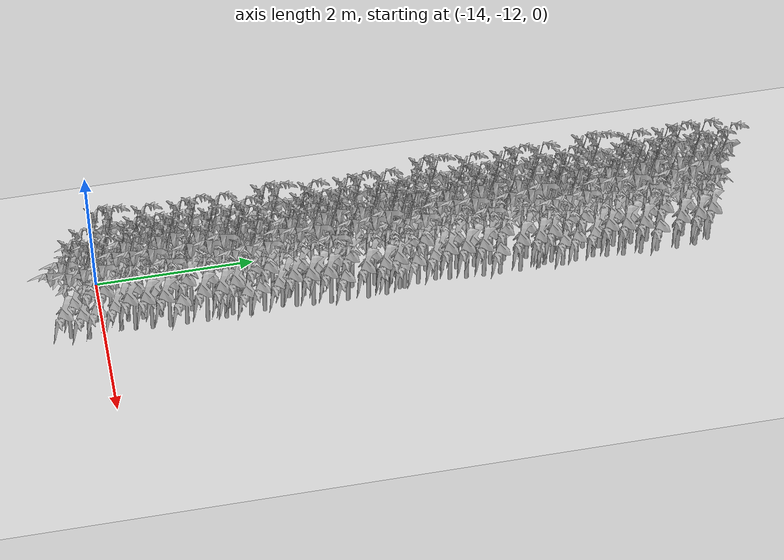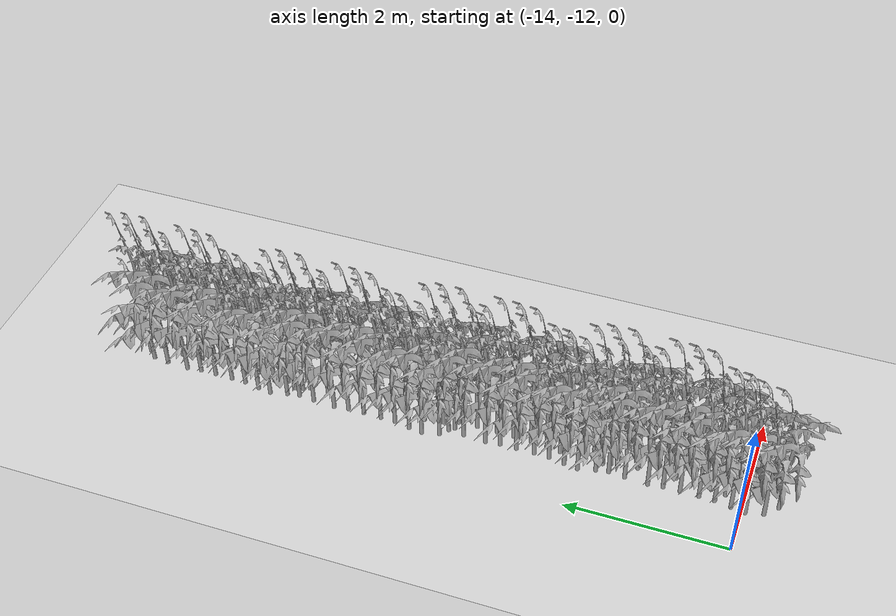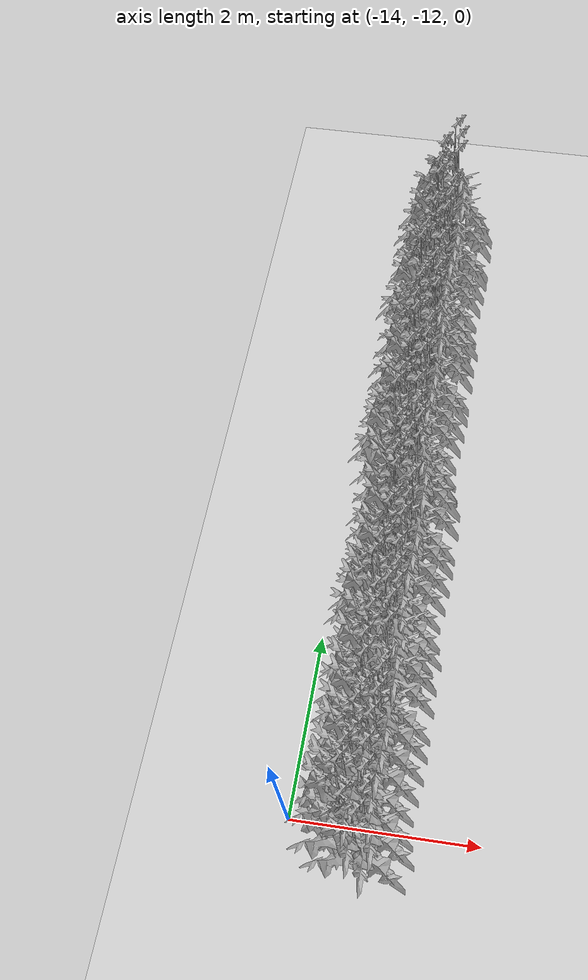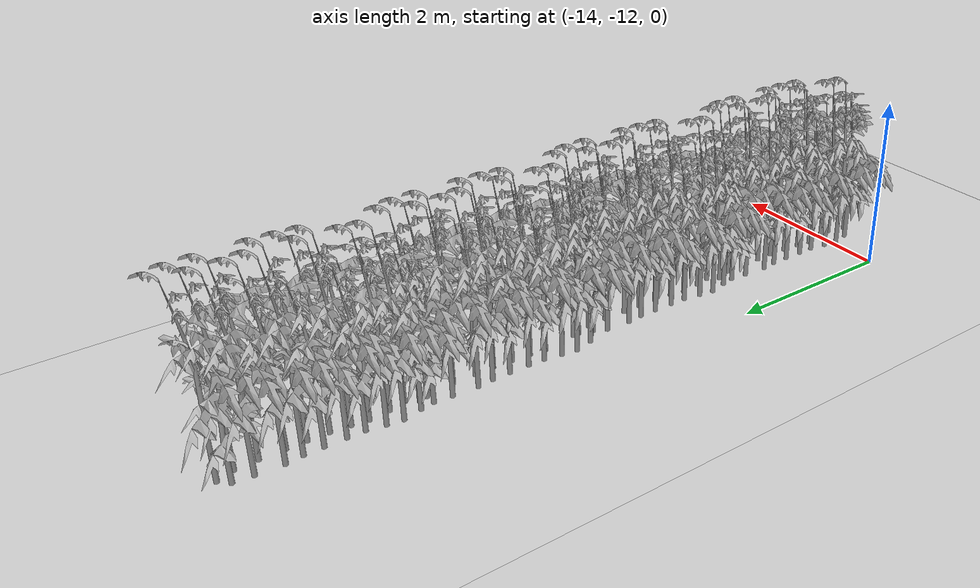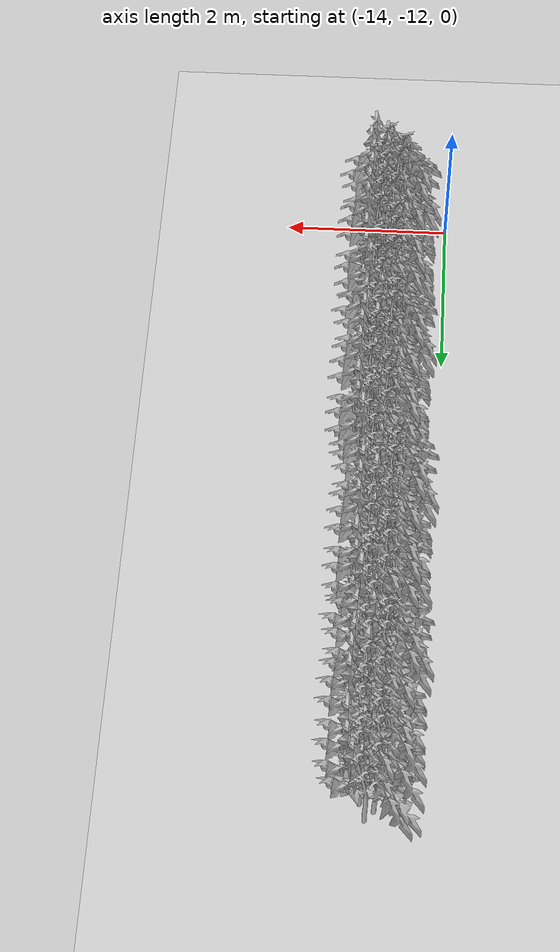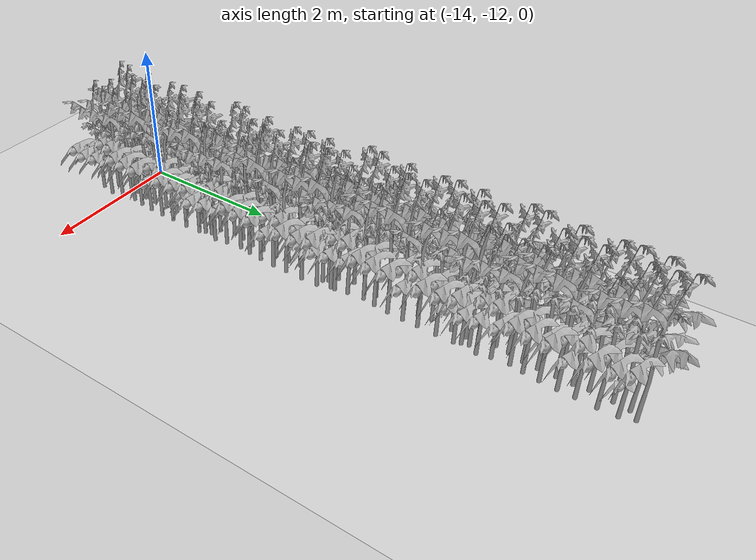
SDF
<sdf version="1.6">
 <world name="default">
  <model name="ground_plane">
   <static>1</static>
   <link name="link">
    <collision name="collision">
     <geometry><plane><normal>0 0 1</normal><size>100 100</size></plane></geometry>
     <surface>
      <contact><collide_bitmask>65535</collide_bitmask></contact>
      <friction><ode><mu>100</mu><mu2>50</mu2></ode></friction>
     </surface>
    </collision>
    <visual name="visual">
     <cast_shadows>0</cast_shadows>
     <geometry><plane><normal>0 0 1</normal><size>100 100</size></plane></geometry>
     <material>
      <script><uri>file://media/materials/scripts/gazebo.material</uri><name>Gazebo/Grey</name></script>
     </material>
    </visual>
   </link>
  </model>
  <model name="MIddle_Plant_3_7">
   <model name="MIddle_Plant_1">
    <model name="tomato_plant_big">
     <static>1</static>
     <link name="link">
      <collision name="collision">
       <pose>0 0 0 1.5708 -0 0</pose>
       <geometry><mesh><scale>0.5 0.6 0.5</scale><uri>model://stick/meshes/stick.dae</uri></mesh></geometry>
      </collision>
      <visual name="visual">
       <geometry>
        <mesh><scale>5e-06 5e-06 7e-06</scale><uri>model://tomato_plant_big/meshes/tomato-plant.dae</uri></mesh>
       </geometry>
      </visual>
     </link>
     <pose>-0.144318 -0.693607 -0 0 -0 0</pose>
    </model>
    <model name="tomato_plant_big_0">
     <static>1</static>
     <link name="link">
      <collision name="collision">
       <pose>0 0 0 1.5708 -0 0</pose>
       <geometry><mesh><scale>0.5 0.6 0.5</scale><uri>model://stick/meshes/stick.dae</uri></mesh></geometry>
      </collision>
      <visual name="visual">
       <geometry>
        <mesh><scale>5e-06 5e-06 7e-06</scale><uri>model://tomato_plant_big/meshes/tomato-plant.dae</uri></mesh>
       </geometry>
      </visual>
     </link>
     <pose>-0.11784 -0.519827 0 0 -0 0</pose>
    </model>
    <model name="tomato_plant_big_1">
     <static>1</static>
     <link name="link">
      <collision name="collision">
       <pose>0 0 0 1.5708 -0 0</pose>
       <geometry><mesh><scale>0.5 0.6 0.5</scale><uri>model://stick/meshes/stick.dae</uri></mesh></geometry>
      </collision>
      <visual name="visual">
       <geometry>
        <mesh><scale>5e-06 5e-06 7e-06</scale><uri>model://tomato_plant_big/meshes/tomato-plant.dae</uri></mesh>
       </geometry>
      </visual>
     </link>
     <pose>0.073755 -0.247584 0 0 -0 0</pose>
    </model>
    <model name="tomato_plant_big_10">
     <static>1</static>
     <link name="link">
      <collision name="collision">
       <pose>0 0 0 1.5708 -0 0</pose>
       <geometry><mesh><scale>0.5 0.6 0.5</scale><uri>model://stick/meshes/stick.dae</uri></mesh></geometry>
      </collision>
      <visual name="visual">
       <geometry>
        <mesh><scale>5e-06 5e-06 7e-06</scale><uri>model://tomato_plant_big/meshes/tomato-plant.dae</uri></mesh>
       </geometry>
      </visual>
     </link>
     <pose>0.037052 1.07094 0 0 -0 0</pose>
    </model>
    <model name="tomato_plant_big_2">
     <static>1</static>
     <link name="link">
      <collision name="collision">
       <pose>0 0 0 1.5708 -0 0</pose>
       <geometry><mesh><scale>0.5 0.6 0.5</scale><uri>model://stick/meshes/stick.dae</uri></mesh></geometry>
      </collision>
      <visual name="visual">
       <geometry>
        <mesh><scale>5e-06 5e-06 7e-06</scale><uri>model://tomato_plant_big/meshes/tomato-plant.dae</uri></mesh>
       </geometry>
      </visual>
     </link>
     <pose>-0.076926 -0.131165 0 0 -0 0</pose>
    </model>
    <model name="tomato_plant_big_3">
     <static>1</static>
     <link name="link">
      <collision name="collision">
       <pose>0 0 0 1.5708 -0 0</pose>
       <geometry><mesh><scale>0.5 0.6 0.5</scale><uri>model://stick/meshes/stick.dae</uri></mesh></geometry>
      </collision>
      <visual name="visual">
       <geometry>
        <mesh><scale>5e-06 5e-06 7e-06</scale><uri>model://tomato_plant_big/meshes/tomato-plant.dae</uri></mesh>
       </geometry>
      </visual>
     </link>
     <pose>0.093714 -0.038386 0 0 -0 0</pose>
    </model>
    <model name="tomato_plant_big_4">
     <static>1</static>
     <link name="link">
      <collision name="collision">
       <pose>0 0 0 1.5708 -0 0</pose>
       <geometry><mesh><scale>0.5 0.6 0.5</scale><uri>model://stick/meshes/stick.dae</uri></mesh></geometry>
      </collision>
      <visual name="visual">
       <geometry>
        <mesh><scale>5e-06 5e-06 7e-06</scale><uri>model://tomato_plant_big/meshes/tomato-plant.dae</uri></mesh>
       </geometry>
      </visual>
     </link>
     <pose>0.103117 0.184356 0 0 -0 0</pose>
    </model>
    <model name="tomato_plant_big_5">
     <static>1</static>
     <link name="link">
      <collision name="collision">
       <pose>0 0 0 1.5708 -0 0</pose>
       <geometry><mesh><scale>0.5 0.6 0.5</scale><uri>model://stick/meshes/stick.dae</uri></mesh></geometry>
      </collision>
      <visual name="visual">
       <geometry>
        <mesh><scale>5e-06 5e-06 7e-06</scale><uri>model://tomato_plant_big/meshes/tomato-plant.dae</uri></mesh>
       </geometry>
      </visual>
     </link>
     <pose>-0.074883 0.301479 0 0 -0 0</pose>
    </model>
    <model name="tomato_plant_big_6">
     <static>1</static>
     <link name="link">
      <collision name="collision">
       <pose>0 0 0 1.5708 -0 0</pose>
       <geometry><mesh><scale>0.5 0.6 0.5</scale><uri>model://stick/meshes/stick.dae</uri></mesh></geometry>
      </collision>
      <visual name="visual">
       <geometry>
        <mesh><scale>5e-06 5e-06 7e-06</scale><uri>model://tomato_plant_big/meshes/tomato-plant.dae</uri></mesh>
       </geometry>
      </visual>
     </link>
     <pose>-0.096921 0.484007 0 0 -0 0</pose>
    </model>
    <model name="tomato_plant_big_7">
     <static>1</static>
     <link name="link">
      <collision name="collision">
       <pose>0 0 0 1.5708 -0 0</pose>
       <geometry><mesh><scale>0.5 0.6 0.5</scale><uri>model://stick/meshes/stick.dae</uri></mesh></geometry>
      </collision>
      <visual name="visual">
       <geometry>
        <mesh><scale>5e-06 5e-06 7e-06</scale><uri>model://tomato_plant_big/meshes/tomato-plant.dae</uri></mesh>
       </geometry>
      </visual>
     </link>
     <pose>0.107491 0.653976 0 0 -0 0</pose>
    </model>
    <model name="tomato_plant_big_8">
     <static>1</static>
     <link name="link">
      <collision name="collision">
       <pose>0 0 0 1.5708 -0 0</pose>
       <geometry><mesh><scale>0.5 0.6 0.5</scale><uri>model://stick/meshes/stick.dae</uri></mesh></geometry>
      </collision>
      <visual name="visual">
       <geometry>
        <mesh><scale>5e-06 5e-06 7e-06</scale><uri>model://tomato_plant_big/meshes/tomato-plant.dae</uri></mesh>
       </geometry>
      </visual>
     </link>
     <pose>-0.07985 0.768549 0 0 -0 0</pose>
    </model>
    <model name="tomato_plant_big_9">
     <static>1</static>
     <link name="link">
      <collision name="collision">
       <pose>0 0 0 1.5708 -0 0</pose>
       <geometry><mesh><scale>0.5 0.6 0.5</scale><uri>model://stick/meshes/stick.dae</uri></mesh></geometry>
      </collision>
      <visual name="visual">
       <geometry>
        <mesh><scale>5e-06 5e-06 7e-06</scale><uri>model://tomato_plant_big/meshes/tomato-plant.dae</uri></mesh>
       </geometry>
      </visual>
     </link>
     <pose>0.098361 0.890852 0 0 -0 0</pose>
    </model>
    <model name="tomato_plant_medium">
     <static>1</static>
     <link name="link">
      <collision name="collision">
       <pose>0 0 0 1.5708 -0 0</pose>
       <geometry><mesh><scale>0.5 0.5 0.5</scale><uri>model://stick/meshes/stick.dae</uri></mesh></geometry>
      </collision>
      <visual name="visual">
       <geometry>
        <mesh><scale>5e-06 5e-06 6e-06</scale><uri>model://tomato_plant_medium/meshes/tomato-plant.dae</uri></mesh>
       </geometry>
      </visual>
     </link>
     <pose>0.056913 -1.05328 0 0 -0 0</pose>
    </model>
    <model name="tomato_plant_medium_0">
     <static>1</static>
     <link name="link">
      <collision name="collision">
       <pose>0 0 0 1.5708 -0 0</pose>
       <geometry><mesh><scale>0.5 0.5 0.5</scale><uri>model://stick/meshes/stick.dae</uri></mesh></geometry>
      </collision>
      <visual name="visual">
       <geometry>
        <mesh><scale>5e-06 5e-06 6e-06</scale><uri>model://tomato_plant_medium/meshes/tomato-plant.dae</uri></mesh>
       </geometry>
      </visual>
     </link>
     <pose>-0.092719 -0.905729 0 0 -0 0</pose>
    </model>
    <model name="tomato_plant_medium_1">
     <static>1</static>
     <link name="link">
      <collision name="collision">
       <pose>0 0 0 1.5708 -0 0</pose>
       <geometry><mesh><scale>0.5 0.5 0.5</scale><uri>model://stick/meshes/stick.dae</uri></mesh></geometry>
      </collision>
      <visual name="visual">
       <geometry>
        <mesh><scale>5e-06 5e-06 6e-06</scale><uri>model://tomato_plant_medium/meshes/tomato-plant.dae</uri></mesh>
       </geometry>
      </visual>
     </link>
     <pose>0.108962 -0.829637 0 0 -0 0</pose>
    </model>
    <model name="tomato_plant_medium_2">
     <static>1</static>
     <link name="link">
      <collision name="collision">
       <pose>0 0 0 1.5708 -0 0</pose>
       <geometry><mesh><scale>0.5 0.5 0.5</scale><uri>model://stick/meshes/stick.dae</uri></mesh></geometry>
      </collision>
      <visual name="visual">
       <geometry>
        <mesh><scale>5e-06 5e-06 6e-06</scale><uri>model://tomato_plant_medium/meshes/tomato-plant.dae</uri></mesh>
       </geometry>
      </visual>
     </link>
     <pose>0.071216 -0.652507 0 0 -0 0</pose>
    </model>
    <model name="tomato_plant_medium_3">
     <static>1</static>
     <link name="link">
      <collision name="collision">
       <pose>0 0 0 1.5708 -0 0</pose>
       <geometry><mesh><scale>0.5 0.5 0.5</scale><uri>model://stick/meshes/stick.dae</uri></mesh></geometry>
      </collision>
      <visual name="visual">
       <geometry>
        <mesh><scale>5e-06 5e-06 6e-06</scale><uri>model://tomato_plant_medium/meshes/tomato-plant.dae</uri></mesh>
       </geometry>
      </visual>
     </link>
     <pose>0.047335 -0.423046 0 0 -0 0</pose>
    </model>
    <model name="tomato_plant_medium_4">
     <static>1</static>
     <link name="link">
      <collision name="collision">
       <pose>0 0 0 1.5708 -0 0</pose>
       <geometry><mesh><scale>0.5 0.5 0.5</scale><uri>model://stick/meshes/stick.dae</uri></mesh></geometry>
      </collision>
      <visual name="visual">
       <geometry>
        <mesh><scale>5e-06 5e-06 6e-06</scale><uri>model://tomato_plant_medium/meshes/tomato-plant.dae</uri></mesh>
       </geometry>
      </visual>
     </link>
     <pose>-0.081012 -0.320324 0 0 -0 0</pose>
    </model>
    <model name="tomato_plant_medium_5">
     <static>1</static>
     <link name="link">
      <collision name="collision">
       <pose>0 0 0 1.5708 -0 0</pose>
       <geometry><mesh><scale>0.5 0.5 0.5</scale><uri>model://stick/meshes/stick.dae</uri></mesh></geometry>
      </collision>
      <visual name="visual">
       <geometry>
        <mesh><scale>5e-06 5e-06 6e-06</scale><uri>model://tomato_plant_medium/meshes/tomato-plant.dae</uri></mesh>
       </geometry>
      </visual>
     </link>
     <pose>-0.07452 0.095988 0 0 -0 0</pose>
    </model>
    <model name="tomato_plant_medium_6">
     <static>1</static>
     <link name="link">
      <collision name="collision">
       <pose>0 0 0 1.5708 -0 0</pose>
       <geometry><mesh><scale>0.5 0.5 0.5</scale><uri>model://stick/meshes/stick.dae</uri></mesh></geometry>
      </collision>
      <visual name="visual">
       <geometry>
        <mesh><scale>5e-06 5e-06 6e-06</scale><uri>model://tomato_plant_medium/meshes/tomato-plant.dae</uri></mesh>
       </geometry>
      </visual>
     </link>
     <pose>0.101424 0.395443 0 0 -0 0</pose>
    </model>
    <model name="tomato_plant_small">
     <static>1</static>
     <link name="link">
      <collision name="collision">
       <pose>0 0 0 1.5708 -0 0</pose>
       <geometry><mesh><scale>0.5 0.45 0.5</scale><uri>model://stick/meshes/stick.dae</uri></mesh></geometry>
      </collision>
      <visual name="visual">
       <geometry>
        <mesh><scale>5e-06 5e-06 5e-06</scale><uri>model://tomato_plant_small/meshes/tomato-plant.dae</uri></mesh>
       </geometry>
      </visual>
     </link>
     <pose>-0.060351 0.969512 0 0 -0 0</pose>
    </model>
    <static>0</static>
    <pose>0.040757 1.77284 0 0 -0 0</pose>
   </model>
   <model name="MIddle_Plant_2">
    <model name="MIddle_Plant_1">
     <model name="tomato_plant_big">
      <static>1</static>
      <link name="link">
       <collision name="collision">
        <pose>0 0 0 1.5708 -0 0</pose>
        <geometry><mesh><scale>0.5 0.6 0.5</scale><uri>model://stick/meshes/stick.dae</uri></mesh></geometry>
       </collision>
       <visual name="visual">
        <geometry>
         <mesh><scale>5e-06 5e-06 7e-06</scale><uri>model://tomato_plant_big/meshes/tomato-plant.dae</uri></mesh>
        </geometry>
       </visual>
      </link>
      <pose>-0.144318 -0.693607 -0 0 -0 0</pose>
     </model>
     <model name="tomato_plant_big_0">
      <static>1</static>
      <link name="link">
       <collision name="collision">
        <pose>0 0 0 1.5708 -0 0</pose>
        <geometry><mesh><scale>0.5 0.6 0.5</scale><uri>model://stick/meshes/stick.dae</uri></mesh></geometry>
       </collision>
       <visual name="visual">
        <geometry>
         <mesh><scale>5e-06 5e-06 7e-06</scale><uri>model://tomato_plant_big/meshes/tomato-plant.dae</uri></mesh>
        </geometry>
       </visual>
      </link>
      <pose>-0.11784 -0.519827 0 0 -0 0</pose>
     </model>
     <model name="tomato_plant_big_1">
      <static>1</static>
      <link name="link">
       <collision name="collision">
        <pose>0 0 0 1.5708 -0 0</pose>
        <geometry><mesh><scale>0.5 0.6 0.5</scale><uri>model://stick/meshes/stick.dae</uri></mesh></geometry>
       </collision>
       <visual name="visual">
        <geometry>
         <mesh><scale>5e-06 5e-06 7e-06</scale><uri>model://tomato_plant_big/meshes/tomato-plant.dae</uri></mesh>
        </geometry>
       </visual>
      </link>
      <pose>0.073755 -0.247584 0 0 -0 0</pose>
     </model>
     <model name="tomato_plant_big_10">
      <static>1</static>
      <link name="link">
       <collision name="collision">
        <pose>0 0 0 1.5708 -0 0</pose>
        <geometry><mesh><scale>0.5 0.6 0.5</scale><uri>model://stick/meshes/stick.dae</uri></mesh></geometry>
       </collision>
       <visual name="visual">
        <geometry>
         <mesh><scale>5e-06 5e-06 7e-06</scale><uri>model://tomato_plant_big/meshes/tomato-plant.dae</uri></mesh>
        </geometry>
       </visual>
      </link>
      <pose>0.037052 1.07094 0 0 -0 0</pose>
     </model>
     <model name="tomato_plant_big_2">
      <static>1</static>
      <link name="link">
       <collision name="collision">
        <pose>0 0 0 1.5708 -0 0</pose>
        <geometry><mesh><scale>0.5 0.6 0.5</scale><uri>model://stick/meshes/stick.dae</uri></mesh></geometry>
       </collision>
       <visual name="visual">
        <geometry>
         <mesh><scale>5e-06 5e-06 7e-06</scale><uri>model://tomato_plant_big/meshes/tomato-plant.dae</uri></mesh>
        </geometry>
       </visual>
      </link>
      <pose>-0.076926 -0.131165 0 0 -0 0</pose>
     </model>
     <model name="tomato_plant_big_3">
      <static>1</static>
      <link name="link">
       <collision name="collision">
        <pose>0 0 0 1.5708 -0 0</pose>
        <geometry><mesh><scale>0.5 0.6 0.5</scale><uri>model://stick/meshes/stick.dae</uri></mesh></geometry>
       </collision>
       <visual name="visual">
        <geometry>
         <mesh><scale>5e-06 5e-06 7e-06</scale><uri>model://tomato_plant_big/meshes/tomato-plant.dae</uri></mesh>
        </geometry>
       </visual>
      </link>
      <pose>0.093714 -0.038386 0 0 -0 0</pose>
     </model>
     <model name="tomato_plant_big_4">
      <static>1</static>
      <link name="link">
       <collision name="collision">
        <pose>0 0 0 1.5708 -0 0</pose>
        <geometry><mesh><scale>0.5 0.6 0.5</scale><uri>model://stick/meshes/stick.dae</uri></mesh></geometry>
       </collision>
       <visual name="visual">
        <geometry>
         <mesh><scale>5e-06 5e-06 7e-06</scale><uri>model://tomato_plant_big/meshes/tomato-plant.dae</uri></mesh>
        </geometry>
       </visual>
      </link>
      <pose>0.103117 0.184356 0 0 -0 0</pose>
     </model>
     <model name="tomato_plant_big_5">
      <static>1</static>
      <link name="link">
       <collision name="collision">
        <pose>0 0 0 1.5708 -0 0</pose>
        <geometry><mesh><scale>0.5 0.6 0.5</scale><uri>model://stick/meshes/stick.dae</uri></mesh></geometry>
       </collision>
       <visual name="visual">
        <geometry>
         <mesh><scale>5e-06 5e-06 7e-06</scale><uri>model://tomato_plant_big/meshes/tomato-plant.dae</uri></mesh>
        </geometry>
       </visual>
      </link>
      <pose>-0.074883 0.301479 0 0 -0 0</pose>
     </model>
     <model name="tomato_plant_big_6">
      <static>1</static>
      <link name="link">
       <collision name="collision">
        <pose>0 0 0 1.5708 -0 0</pose>
        <geometry><mesh><scale>0.5 0.6 0.5</scale><uri>model://stick/meshes/stick.dae</uri></mesh></geometry>
       </collision>
       <visual name="visual">
        <geometry>
         <mesh><scale>5e-06 5e-06 7e-06</scale><uri>model://tomato_plant_big/meshes/tomato-plant.dae</uri></mesh>
        </geometry>
       </visual>
      </link>
      <pose>-0.096921 0.484007 0 0 -0 0</pose>
     </model>
     <model name="tomato_plant_big_7">
      <static>1</static>
      <link name="link">
       <collision name="collision">
        <pose>0 0 0 1.5708 -0 0</pose>
        <geometry><mesh><scale>0.5 0.6 0.5</scale><uri>model://stick/meshes/stick.dae</uri></mesh></geometry>
       </collision>
       <visual name="visual">
        <geometry>
         <mesh><scale>5e-06 5e-06 7e-06</scale><uri>model://tomato_plant_big/meshes/tomato-plant.dae</uri></mesh>
        </geometry>
       </visual>
      </link>
      <pose>0.107491 0.653976 0 0 -0 0</pose>
     </model>
     <model name="tomato_plant_big_8">
      <static>1</static>
      <link name="link">
       <collision name="collision">
        <pose>0 0 0 1.5708 -0 0</pose>
        <geometry><mesh><scale>0.5 0.6 0.5</scale><uri>model://stick/meshes/stick.dae</uri></mesh></geometry>
       </collision>
       <visual name="visual">
        <geometry>
         <mesh><scale>5e-06 5e-06 7e-06</scale><uri>model://tomato_plant_big/meshes/tomato-plant.dae</uri></mesh>
        </geometry>
       </visual>
      </link>
      <pose>-0.07985 0.768549 0 0 -0 0</pose>
     </model>
     <model name="tomato_plant_big_9">
      <static>1</static>
      <link name="link">
       <collision name="collision">
        <pose>0 0 0 1.5708 -0 0</pose>
        <geometry><mesh><scale>0.5 0.6 0.5</scale><uri>model://stick/meshes/stick.dae</uri></mesh></geometry>
       </collision>
       <visual name="visual">
        <geometry>
         <mesh><scale>5e-06 5e-06 7e-06</scale><uri>model://tomato_plant_big/meshes/tomato-plant.dae</uri></mesh>
        </geometry>
       </visual>
      </link>
      <pose>0.098361 0.890852 0 0 -0 0</pose>
     </model>
     <model name="tomato_plant_medium">
      <static>1</static>
      <link name="link">
       <collision name="collision">
        <pose>0 0 0 1.5708 -0 0</pose>
        <geometry><mesh><scale>0.5 0.5 0.5</scale><uri>model://stick/meshes/stick.dae</uri></mesh></geometry>
       </collision>
       <visual name="visual">
        <geometry>
         <mesh><scale>5e-06 5e-06 6e-06</scale><uri>model://tomato_plant_medium/meshes/tomato-plant.dae</uri></mesh>
        </geometry>
       </visual>
      </link>
      <pose>0.056913 -1.05328 0 0 -0 0</pose>
     </model>
     <model name="tomato_plant_medium_0">
      <static>1</static>
      <link name="link">
       <collision name="collision">
        <pose>0 0 0 1.5708 -0 0</pose>
        <geometry><mesh><scale>0.5 0.5 0.5</scale><uri>model://stick/meshes/stick.dae</uri></mesh></geometry>
       </collision>
       <visual name="visual">
        <geometry>
         <mesh><scale>5e-06 5e-06 6e-06</scale><uri>model://tomato_plant_medium/meshes/tomato-plant.dae</uri></mesh>
        </geometry>
       </visual>
      </link>
      <pose>-0.092719 -0.905729 0 0 -0 0</pose>
     </model>
     <model name="tomato_plant_medium_1">
      <static>1</static>
      <link name="link">
       <collision name="collision">
        <pose>0 0 0 1.5708 -0 0</pose>
        <geometry><mesh><scale>0.5 0.5 0.5</scale><uri>model://stick/meshes/stick.dae</uri></mesh></geometry>
       </collision>
       <visual name="visual">
        <geometry>
         <mesh><scale>5e-06 5e-06 6e-06</scale><uri>model://tomato_plant_medium/meshes/tomato-plant.dae</uri></mesh>
        </geometry>
       </visual>
      </link>
      <pose>0.108962 -0.829637 0 0 -0 0</pose>
     </model>
     <model name="tomato_plant_medium_2">
      <static>1</static>
      <link name="link">
       <collision name="collision">
        <pose>0 0 0 1.5708 -0 0</pose>
        <geometry><mesh><scale>0.5 0.5 0.5</scale><uri>model://stick/meshes/stick.dae</uri></mesh></geometry>
       </collision>
       <visual name="visual">
        <geometry>
         <mesh><scale>5e-06 5e-06 6e-06</scale><uri>model://tomato_plant_medium/meshes/tomato-plant.dae</uri></mesh>
        </geometry>
       </visual>
      </link>
      <pose>0.071216 -0.652507 0 0 -0 0</pose>
     </model>
     <model name="tomato_plant_medium_3">
      <static>1</static>
      <link name="link">
       <collision name="collision">
        <pose>0 0 0 1.5708 -0 0</pose>
        <geometry><mesh><scale>0.5 0.5 0.5</scale><uri>model://stick/meshes/stick.dae</uri></mesh></geometry>
       </collision>
       <visual name="visual">
        <geometry>
         <mesh><scale>5e-06 5e-06 6e-06</scale><uri>model://tomato_plant_medium/meshes/tomato-plant.dae</uri></mesh>
        </geometry>
       </visual>
      </link>
      <pose>0.047335 -0.423046 0 0 -0 0</pose>
     </model>
     <model name="tomato_plant_medium_4">
      <static>1</static>
      <link name="link">
       <collision name="collision">
        <pose>0 0 0 1.5708 -0 0</pose>
        <geometry><mesh><scale>0.5 0.5 0.5</scale><uri>model://stick/meshes/stick.dae</uri></mesh></geometry>
       </collision>
       <visual name="visual">
        <geometry>
         <mesh><scale>5e-06 5e-06 6e-06</scale><uri>model://tomato_plant_medium/meshes/tomato-plant.dae</uri></mesh>
        </geometry>
       </visual>
      </link>
      <pose>-0.081012 -0.320324 0 0 -0 0</pose>
     </model>
     <model name="tomato_plant_medium_5">
      <static>1</static>
      <link name="link">
       <collision name="collision">
        <pose>0 0 0 1.5708 -0 0</pose>
        <geometry><mesh><scale>0.5 0.5 0.5</scale><uri>model://stick/meshes/stick.dae</uri></mesh></geometry>
       </collision>
       <visual name="visual">
        <geometry>
         <mesh><scale>5e-06 5e-06 6e-06</scale><uri>model://tomato_plant_medium/meshes/tomato-plant.dae</uri></mesh>
        </geometry>
       </visual>
      </link>
      <pose>-0.07452 0.095988 0 0 -0 0</pose>
     </model>
     <model name="tomato_plant_medium_6">
      <static>1</static>
      <link name="link">
       <collision name="collision">
        <pose>0 0 0 1.5708 -0 0</pose>
        <geometry><mesh><scale>0.5 0.5 0.5</scale><uri>model://stick/meshes/stick.dae</uri></mesh></geometry>
       </collision>
       <visual name="visual">
        <geometry>
         <mesh><scale>5e-06 5e-06 6e-06</scale><uri>model://tomato_plant_medium/meshes/tomato-plant.dae</uri></mesh>
        </geometry>
       </visual>
      </link>
      <pose>0.101424 0.395443 0 0 -0 0</pose>
     </model>
     <model name="tomato_plant_small">
      <static>1</static>
      <link name="link">
       <collision name="collision">
        <pose>0 0 0 1.5708 -0 0</pose>
        <geometry><mesh><scale>0.5 0.45 0.5</scale><uri>model://stick/meshes/stick.dae</uri></mesh></geometry>
       </collision>
       <visual name="visual">
        <geometry>
         <mesh><scale>5e-06 5e-06 5e-06</scale><uri>model://tomato_plant_small/meshes/tomato-plant.dae</uri></mesh>
        </geometry>
       </visual>
      </link>
      <pose>-0.060351 0.969512 0 0 -0 0</pose>
     </model>
     <static>0</static>
     <pose>0.763113 0.028917 0 0 -0 0</pose>
    </model>
    <model name="tomato_plant_big">
     <static>1</static>
     <link name="link">
      <collision name="collision">
       <pose>0 0 0 1.5708 -0 0</pose>
       <geometry><mesh><scale>0.5 0.6 0.5</scale><uri>model://stick/meshes/stick.dae</uri></mesh></geometry>
      </collision>
      <visual name="visual">
       <geometry>
        <mesh><scale>5e-06 5e-06 7e-06</scale><uri>model://tomato_plant_big/meshes/tomato-plant.dae</uri></mesh>
       </geometry>
      </visual>
     </link>
     <pose>0.613724 -2.69399 -0 0 -0 0</pose>
    </model>
    <model name="tomato_plant_big_0">
     <static>1</static>
     <link name="link">
      <collision name="collision">
       <pose>0 0 0 1.5708 -0 0</pose>
       <geometry><mesh><scale>0.5 0.6 0.5</scale><uri>model://stick/meshes/stick.dae</uri></mesh></geometry>
      </collision>
      <visual name="visual">
       <geometry>
        <mesh><scale>5e-06 5e-06 7e-06</scale><uri>model://tomato_plant_big/meshes/tomato-plant.dae</uri></mesh>
       </geometry>
      </visual>
     </link>
     <pose>0.640202 -2.52021 0 0 -0 0</pose>
    </model>
    <model name="tomato_plant_big_1">
     <static>1</static>
     <link name="link">
      <collision name="collision">
       <pose>0 0 0 1.5708 -0 0</pose>
       <geometry><mesh><scale>0.5 0.6 0.5</scale><uri>model://stick/meshes/stick.dae</uri></mesh></geometry>
      </collision>
      <visual name="visual">
       <geometry>
        <mesh><scale>5e-06 5e-06 7e-06</scale><uri>model://tomato_plant_big/meshes/tomato-plant.dae</uri></mesh>
       </geometry>
      </visual>
     </link>
     <pose>0.831797 -2.24797 0 0 -0 0</pose>
    </model>
    <model name="tomato_plant_big_10">
     <static>1</static>
     <link name="link">
      <collision name="collision">
       <pose>0 0 0 1.5708 -0 0</pose>
       <geometry><mesh><scale>0.5 0.6 0.5</scale><uri>model://stick/meshes/stick.dae</uri></mesh></geometry>
      </collision>
      <visual name="visual">
       <geometry>
        <mesh><scale>5e-06 5e-06 7e-06</scale><uri>model://tomato_plant_big/meshes/tomato-plant.dae</uri></mesh>
       </geometry>
      </visual>
     </link>
     <pose>0.795094 -0.929446 0 0 -0 0</pose>
    </model>
    <model name="tomato_plant_big_2">
     <static>1</static>
     <link name="link">
      <collision name="collision">
       <pose>0 0 0 1.5708 -0 0</pose>
       <geometry><mesh><scale>0.5 0.6 0.5</scale><uri>model://stick/meshes/stick.dae</uri></mesh></geometry>
      </collision>
      <visual name="visual">
       <geometry>
        <mesh><scale>5e-06 5e-06 7e-06</scale><uri>model://tomato_plant_big/meshes/tomato-plant.dae</uri></mesh>
       </geometry>
      </visual>
     </link>
     <pose>0.681116 -2.13155 0 0 -0 0</pose>
    </model>
    <model name="tomato_plant_big_3">
     <static>1</static>
     <link name="link">
      <collision name="collision">
       <pose>0 0 0 1.5708 -0 0</pose>
       <geometry><mesh><scale>0.5 0.6 0.5</scale><uri>model://stick/meshes/stick.dae</uri></mesh></geometry>
      </collision>
      <visual name="visual">
       <geometry>
        <mesh><scale>5e-06 5e-06 7e-06</scale><uri>model://tomato_plant_big/meshes/tomato-plant.dae</uri></mesh>
       </geometry>
      </visual>
     </link>
     <pose>0.851755 -2.03877 0 0 -0 0</pose>
    </model>
    <model name="tomato_plant_big_4">
     <static>1</static>
     <link name="link">
      <collision name="collision">
       <pose>0 0 0 1.5708 -0 0</pose>
       <geometry><mesh><scale>0.5 0.6 0.5</scale><uri>model://stick/meshes/stick.dae</uri></mesh></geometry>
      </collision>
      <visual name="visual">
       <geometry>
        <mesh><scale>5e-06 5e-06 7e-06</scale><uri>model://tomato_plant_big/meshes/tomato-plant.dae</uri></mesh>
       </geometry>
      </visual>
     </link>
     <pose>0.861158 -1.81603 0 0 -0 0</pose>
    </model>
    <model name="tomato_plant_big_5">
     <static>1</static>
     <link name="link">
      <collision name="collision">
       <pose>0 0 0 1.5708 -0 0</pose>
       <geometry><mesh><scale>0.5 0.6 0.5</scale><uri>model://stick/meshes/stick.dae</uri></mesh></geometry>
      </collision>
      <visual name="visual">
       <geometry>
        <mesh><scale>5e-06 5e-06 7e-06</scale><uri>model://tomato_plant_big/meshes/tomato-plant.dae</uri></mesh>
       </geometry>
      </visual>
     </link>
     <pose>0.683158 -1.69891 0 0 -0 0</pose>
    </model>
    <model name="tomato_plant_big_6">
     <static>1</static>
     <link name="link">
      <collision name="collision">
       <pose>0 0 0 1.5708 -0 0</pose>
       <geometry><mesh><scale>0.5 0.6 0.5</scale><uri>model://stick/meshes/stick.dae</uri></mesh></geometry>
      </collision>
      <visual name="visual">
       <geometry>
        <mesh><scale>5e-06 5e-06 7e-06</scale><uri>model://tomato_plant_big/meshes/tomato-plant.dae</uri></mesh>
       </geometry>
      </visual>
     </link>
     <pose>0.66112 -1.51638 0 0 -0 0</pose>
    </model>
    <model name="tomato_plant_big_7">
     <static>1</static>
     <link name="link">
      <collision name="collision">
       <pose>0 0 0 1.5708 -0 0</pose>
       <geometry><mesh><scale>0.5 0.6 0.5</scale><uri>model://stick/meshes/stick.dae</uri></mesh></geometry>
      </collision>
      <visual name="visual">
       <geometry>
        <mesh><scale>5e-06 5e-06 7e-06</scale><uri>model://tomato_plant_big/meshes/tomato-plant.dae</uri></mesh>
       </geometry>
      </visual>
     </link>
     <pose>0.865532 -1.34641 0 0 -0 0</pose>
    </model>
    <model name="tomato_plant_big_8">
     <static>1</static>
     <link name="link">
      <collision name="collision">
       <pose>0 0 0 1.5708 -0 0</pose>
       <geometry><mesh><scale>0.5 0.6 0.5</scale><uri>model://stick/meshes/stick.dae</uri></mesh></geometry>
      </collision>
      <visual name="visual">
       <geometry>
        <mesh><scale>5e-06 5e-06 7e-06</scale><uri>model://tomato_plant_big/meshes/tomato-plant.dae</uri></mesh>
       </geometry>
      </visual>
     </link>
     <pose>0.678192 -1.23184 0 0 -0 0</pose>
    </model>
    <model name="tomato_plant_big_9">
     <static>1</static>
     <link name="link">
      <collision name="collision">
       <pose>0 0 0 1.5708 -0 0</pose>
       <geometry><mesh><scale>0.5 0.6 0.5</scale><uri>model://stick/meshes/stick.dae</uri></mesh></geometry>
      </collision>
      <visual name="visual">
       <geometry>
        <mesh><scale>5e-06 5e-06 7e-06</scale><uri>model://tomato_plant_big/meshes/tomato-plant.dae</uri></mesh>
       </geometry>
      </visual>
     </link>
     <pose>0.856402 -1.10953 0 0 -0 0</pose>
    </model>
    <model name="tomato_plant_medium">
     <static>1</static>
     <link name="link">
      <collision name="collision">
       <pose>0 0 0 1.5708 -0 0</pose>
       <geometry><mesh><scale>0.5 0.5 0.5</scale><uri>model://stick/meshes/stick.dae</uri></mesh></geometry>
      </collision>
      <visual name="visual">
       <geometry>
        <mesh><scale>5e-06 5e-06 6e-06</scale><uri>model://tomato_plant_medium/meshes/tomato-plant.dae</uri></mesh>
       </geometry>
      </visual>
     </link>
     <pose>0.814955 -3.05367 0 0 -0 0</pose>
    </model>
    <model name="tomato_plant_medium_0">
     <static>1</static>
     <link name="link">
      <collision name="collision">
       <pose>0 0 0 1.5708 -0 0</pose>
       <geometry><mesh><scale>0.5 0.5 0.5</scale><uri>model://stick/meshes/stick.dae</uri></mesh></geometry>
      </collision>
      <visual name="visual">
       <geometry>
        <mesh><scale>5e-06 5e-06 6e-06</scale><uri>model://tomato_plant_medium/meshes/tomato-plant.dae</uri></mesh>
       </geometry>
      </visual>
     </link>
     <pose>0.665322 -2.90611 0 0 -0 0</pose>
    </model>
    <model name="tomato_plant_medium_1">
     <static>1</static>
     <link name="link">
      <collision name="collision">
       <pose>0 0 0 1.5708 -0 0</pose>
       <geometry><mesh><scale>0.5 0.5 0.5</scale><uri>model://stick/meshes/stick.dae</uri></mesh></geometry>
      </collision>
      <visual name="visual">
       <geometry>
        <mesh><scale>5e-06 5e-06 6e-06</scale><uri>model://tomato_plant_medium/meshes/tomato-plant.dae</uri></mesh>
       </geometry>
      </visual>
     </link>
     <pose>0.867004 -2.83002 0 0 -0 0</pose>
    </model>
    <model name="tomato_plant_medium_2">
     <static>1</static>
     <link name="link">
      <collision name="collision">
       <pose>0 0 0 1.5708 -0 0</pose>
       <geometry><mesh><scale>0.5 0.5 0.5</scale><uri>model://stick/meshes/stick.dae</uri></mesh></geometry>
      </collision>
      <visual name="visual">
       <geometry>
        <mesh><scale>5e-06 5e-06 6e-06</scale><uri>model://tomato_plant_medium/meshes/tomato-plant.dae</uri></mesh>
       </geometry>
      </visual>
     </link>
     <pose>0.829257 -2.65289 0 0 -0 0</pose>
    </model>
    <model name="tomato_plant_medium_3">
     <static>1</static>
     <link name="link">
      <collision name="collision">
       <pose>0 0 0 1.5708 -0 0</pose>
       <geometry><mesh><scale>0.5 0.5 0.5</scale><uri>model://stick/meshes/stick.dae</uri></mesh></geometry>
      </collision>
      <visual name="visual">
       <geometry>
        <mesh><scale>5e-06 5e-06 6e-06</scale><uri>model://tomato_plant_medium/meshes/tomato-plant.dae</uri></mesh>
       </geometry>
      </visual>
     </link>
     <pose>0.805376 -2.42343 0 0 -0 0</pose>
    </model>
    <model name="tomato_plant_medium_4">
     <static>1</static>
     <link name="link">
      <collision name="collision">
       <pose>0 0 0 1.5708 -0 0</pose>
       <geometry><mesh><scale>0.5 0.5 0.5</scale><uri>model://stick/meshes/stick.dae</uri></mesh></geometry>
      </collision>
      <visual name="visual">
       <geometry>
        <mesh><scale>5e-06 5e-06 6e-06</scale><uri>model://tomato_plant_medium/meshes/tomato-plant.dae</uri></mesh>
       </geometry>
      </visual>
     </link>
     <pose>0.67703 -2.32071 0 0 -0 0</pose>
    </model>
    <model name="tomato_plant_medium_5">
     <static>1</static>
     <link name="link">
      <collision name="collision">
       <pose>0 0 0 1.5708 -0 0</pose>
       <geometry><mesh><scale>0.5 0.5 0.5</scale><uri>model://stick/meshes/stick.dae</uri></mesh></geometry>
      </collision>
      <visual name="visual">
       <geometry>
        <mesh><scale>5e-06 5e-06 6e-06</scale><uri>model://tomato_plant_medium/meshes/tomato-plant.dae</uri></mesh>
       </geometry>
      </visual>
     </link>
     <pose>0.683522 -1.9044 0 0 -0 0</pose>
    </model>
    <model name="tomato_plant_medium_6">
     <static>1</static>
     <link name="link">
      <collision name="collision">
       <pose>0 0 0 1.5708 -0 0</pose>
       <geometry><mesh><scale>0.5 0.5 0.5</scale><uri>model://stick/meshes/stick.dae</uri></mesh></geometry>
      </collision>
      <visual name="visual">
       <geometry>
        <mesh><scale>5e-06 5e-06 6e-06</scale><uri>model://tomato_plant_medium/meshes/tomato-plant.dae</uri></mesh>
       </geometry>
      </visual>
     </link>
     <pose>0.859466 -1.60494 0 0 -0 0</pose>
    </model>
    <model name="tomato_plant_small">
     <static>1</static>
     <link name="link">
      <collision name="collision">
       <pose>0 0 0 1.5708 -0 0</pose>
       <geometry><mesh><scale>0.5 0.45 0.5</scale><uri>model://stick/meshes/stick.dae</uri></mesh></geometry>
      </collision>
      <visual name="visual">
       <geometry>
        <mesh><scale>5e-06 5e-06 5e-06</scale><uri>model://tomato_plant_small/meshes/tomato-plant.dae</uri></mesh>
       </geometry>
      </visual>
     </link>
     <pose>0.697691 -1.03087 0 0 -0 0</pose>
    </model>
    <static>0</static>
    <pose>-0.78485 5.73439 0 0 -0 0</pose>
   </model>
   <model name="tomato_plant_big">
    <static>1</static>
    <link name="link">
     <collision name="collision">
      <pose>0 0 0 1.5708 -0 0</pose>
      <geometry><mesh><scale>0.5 0.6 0.5</scale><uri>model://stick/meshes/stick.dae</uri></mesh></geometry>
     </collision>
     <visual name="visual">
      <geometry>
       <mesh><scale>5e-06 5e-06 7e-06</scale><uri>model://tomato_plant_big/meshes/tomato-plant.dae</uri></mesh>
      </geometry>
     </visual>
    </link>
    <pose>-0.108632 -0.950068 -0 0 -0 0</pose>
   </model>
   <model name="tomato_plant_big_0">
    <static>1</static>
    <link name="link">
     <collision name="collision">
      <pose>0 0 0 1.5708 -0 0</pose>
      <geometry><mesh><scale>0.5 0.6 0.5</scale><uri>model://stick/meshes/stick.dae</uri></mesh></geometry>
     </collision>
     <visual name="visual">
      <geometry>
       <mesh><scale>5e-06 5e-06 7e-06</scale><uri>model://tomato_plant_big/meshes/tomato-plant.dae</uri></mesh>
      </geometry>
     </visual>
    </link>
    <pose>-0.082154 -0.776288 0 0 -0 0</pose>
   </model>
   <model name="tomato_plant_big_1">
    <static>1</static>
    <link name="link">
     <collision name="collision">
      <pose>0 0 0 1.5708 -0 0</pose>
      <geometry><mesh><scale>0.5 0.6 0.5</scale><uri>model://stick/meshes/stick.dae</uri></mesh></geometry>
     </collision>
     <visual name="visual">
      <geometry>
       <mesh><scale>5e-06 5e-06 7e-06</scale><uri>model://tomato_plant_big/meshes/tomato-plant.dae</uri></mesh>
      </geometry>
     </visual>
    </link>
    <pose>0.109441 -0.504045 0 0 -0 0</pose>
   </model>
   <model name="tomato_plant_big_10">
    <static>1</static>
    <link name="link">
     <collision name="collision">
      <pose>0 0 0 1.5708 -0 0</pose>
      <geometry><mesh><scale>0.5 0.6 0.5</scale><uri>model://stick/meshes/stick.dae</uri></mesh></geometry>
     </collision>
     <visual name="visual">
      <geometry>
       <mesh><scale>5e-06 5e-06 7e-06</scale><uri>model://tomato_plant_big/meshes/tomato-plant.dae</uri></mesh>
      </geometry>
     </visual>
    </link>
    <pose>0.072738 0.814477 0 0 -0 0</pose>
   </model>
   <model name="tomato_plant_big_2">
    <static>1</static>
    <link name="link">
     <collision name="collision">
      <pose>0 0 0 1.5708 -0 0</pose>
      <geometry><mesh><scale>0.5 0.6 0.5</scale><uri>model://stick/meshes/stick.dae</uri></mesh></geometry>
     </collision>
     <visual name="visual">
      <geometry>
       <mesh><scale>5e-06 5e-06 7e-06</scale><uri>model://tomato_plant_big/meshes/tomato-plant.dae</uri></mesh>
      </geometry>
     </visual>
    </link>
    <pose>-0.04124 -0.387626 0 0 -0 0</pose>
   </model>
   <model name="tomato_plant_big_3">
    <static>1</static>
    <link name="link">
     <collision name="collision">
      <pose>0 0 0 1.5708 -0 0</pose>
      <geometry><mesh><scale>0.5 0.6 0.5</scale><uri>model://stick/meshes/stick.dae</uri></mesh></geometry>
     </collision>
     <visual name="visual">
      <geometry>
       <mesh><scale>5e-06 5e-06 7e-06</scale><uri>model://tomato_plant_big/meshes/tomato-plant.dae</uri></mesh>
      </geometry>
     </visual>
    </link>
    <pose>0.129399 -0.294847 0 0 -0 0</pose>
   </model>
   <model name="tomato_plant_big_4">
    <static>1</static>
    <link name="link">
     <collision name="collision">
      <pose>0 0 0 1.5708 -0 0</pose>
      <geometry><mesh><scale>0.5 0.6 0.5</scale><uri>model://stick/meshes/stick.dae</uri></mesh></geometry>
     </collision>
     <visual name="visual">
      <geometry>
       <mesh><scale>5e-06 5e-06 7e-06</scale><uri>model://tomato_plant_big/meshes/tomato-plant.dae</uri></mesh>
      </geometry>
     </visual>
    </link>
    <pose>0.138802 -0.072105 0 0 -0 0</pose>
   </model>
   <model name="tomato_plant_big_5">
    <static>1</static>
    <link name="link">
     <collision name="collision">
      <pose>0 0 0 1.5708 -0 0</pose>
      <geometry><mesh><scale>0.5 0.6 0.5</scale><uri>model://stick/meshes/stick.dae</uri></mesh></geometry>
     </collision>
     <visual name="visual">
      <geometry>
       <mesh><scale>5e-06 5e-06 7e-06</scale><uri>model://tomato_plant_big/meshes/tomato-plant.dae</uri></mesh>
      </geometry>
     </visual>
    </link>
    <pose>-0.039198 0.045018 0 0 -0 0</pose>
   </model>
   <model name="tomato_plant_big_6">
    <static>1</static>
    <link name="link">
     <collision name="collision">
      <pose>0 0 0 1.5708 -0 0</pose>
      <geometry><mesh><scale>0.5 0.6 0.5</scale><uri>model://stick/meshes/stick.dae</uri></mesh></geometry>
     </collision>
     <visual name="visual">
      <geometry>
       <mesh><scale>5e-06 5e-06 7e-06</scale><uri>model://tomato_plant_big/meshes/tomato-plant.dae</uri></mesh>
      </geometry>
     </visual>
    </link>
    <pose>-0.061236 0.227546 0 0 -0 0</pose>
   </model>
   <model name="tomato_plant_big_7">
    <static>1</static>
    <link name="link">
     <collision name="collision">
      <pose>0 0 0 1.5708 -0 0</pose>
      <geometry><mesh><scale>0.5 0.6 0.5</scale><uri>model://stick/meshes/stick.dae</uri></mesh></geometry>
     </collision>
     <visual name="visual">
      <geometry>
       <mesh><scale>5e-06 5e-06 7e-06</scale><uri>model://tomato_plant_big/meshes/tomato-plant.dae</uri></mesh>
      </geometry>
     </visual>
    </link>
    <pose>0.143176 0.397515 0 0 -0 0</pose>
   </model>
   <model name="tomato_plant_big_8">
    <static>1</static>
    <link name="link">
     <collision name="collision">
      <pose>0 0 0 1.5708 -0 0</pose>
      <geometry><mesh><scale>0.5 0.6 0.5</scale><uri>model://stick/meshes/stick.dae</uri></mesh></geometry>
     </collision>
     <visual name="visual">
      <geometry>
       <mesh><scale>5e-06 5e-06 7e-06</scale><uri>model://tomato_plant_big/meshes/tomato-plant.dae</uri></mesh>
      </geometry>
     </visual>
    </link>
    <pose>-0.044164 0.512088 0 0 -0 0</pose>
   </model>
   <model name="tomato_plant_big_9">
    <static>1</static>
    <link name="link">
     <collision name="collision">
      <pose>0 0 0 1.5708 -0 0</pose>
      <geometry><mesh><scale>0.5 0.6 0.5</scale><uri>model://stick/meshes/stick.dae</uri></mesh></geometry>
     </collision>
     <visual name="visual">
      <geometry>
       <mesh><scale>5e-06 5e-06 7e-06</scale><uri>model://tomato_plant_big/meshes/tomato-plant.dae</uri></mesh>
      </geometry>
     </visual>
    </link>
    <pose>0.134046 0.634391 0 0 -0 0</pose>
   </model>
   <model name="tomato_plant_medium">
    <static>1</static>
    <link name="link">
     <collision name="collision">
      <pose>0 0 0 1.5708 -0 0</pose>
      <geometry><mesh><scale>0.5 0.5 0.5</scale><uri>model://stick/meshes/stick.dae</uri></mesh></geometry>
     </collision>
     <visual name="visual">
      <geometry>
       <mesh><scale>5e-06 5e-06 6e-06</scale><uri>model://tomato_plant_medium/meshes/tomato-plant.dae</uri></mesh>
      </geometry>
     </visual>
    </link>
    <pose>0.092599 -1.30974 0 0 -0 0</pose>
   </model>
   <model name="tomato_plant_medium_0">
    <static>1</static>
    <link name="link">
     <collision name="collision">
      <pose>0 0 0 1.5708 -0 0</pose>
      <geometry><mesh><scale>0.5 0.5 0.5</scale><uri>model://stick/meshes/stick.dae</uri></mesh></geometry>
     </collision>
     <visual name="visual">
      <geometry>
       <mesh><scale>5e-06 5e-06 6e-06</scale><uri>model://tomato_plant_medium/meshes/tomato-plant.dae</uri></mesh>
      </geometry>
     </visual>
    </link>
    <pose>-0.057034 -1.16219 0 0 -0 0</pose>
   </model>
   <model name="tomato_plant_medium_1">
    <static>1</static>
    <link name="link">
     <collision name="collision">
      <pose>0 0 0 1.5708 -0 0</pose>
      <geometry><mesh><scale>0.5 0.5 0.5</scale><uri>model://stick/meshes/stick.dae</uri></mesh></geometry>
     </collision>
     <visual name="visual">
      <geometry>
       <mesh><scale>5e-06 5e-06 6e-06</scale><uri>model://tomato_plant_medium/meshes/tomato-plant.dae</uri></mesh>
      </geometry>
     </visual>
    </link>
    <pose>0.144648 -1.0861 0 0 -0 0</pose>
   </model>
   <model name="tomato_plant_medium_2">
    <static>1</static>
    <link name="link">
     <collision name="collision">
      <pose>0 0 0 1.5708 -0 0</pose>
      <geometry><mesh><scale>0.5 0.5 0.5</scale><uri>model://stick/meshes/stick.dae</uri></mesh></geometry>
     </collision>
     <visual name="visual">
      <geometry>
       <mesh><scale>5e-06 5e-06 6e-06</scale><uri>model://tomato_plant_medium/meshes/tomato-plant.dae</uri></mesh>
      </geometry>
     </visual>
    </link>
    <pose>0.106901 -0.908968 0 0 -0 0</pose>
   </model>
   <model name="tomato_plant_medium_3">
    <static>1</static>
    <link name="link">
     <collision name="collision">
      <pose>0 0 0 1.5708 -0 0</pose>
      <geometry><mesh><scale>0.5 0.5 0.5</scale><uri>model://stick/meshes/stick.dae</uri></mesh></geometry>
     </collision>
     <visual name="visual">
      <geometry>
       <mesh><scale>5e-06 5e-06 6e-06</scale><uri>model://tomato_plant_medium/meshes/tomato-plant.dae</uri></mesh>
      </geometry>
     </visual>
    </link>
    <pose>0.08302 -0.679508 0 0 -0 0</pose>
   </model>
   <model name="tomato_plant_medium_4">
    <static>1</static>
    <link name="link">
     <collision name="collision">
      <pose>0 0 0 1.5708 -0 0</pose>
      <geometry><mesh><scale>0.5 0.5 0.5</scale><uri>model://stick/meshes/stick.dae</uri></mesh></geometry>
     </collision>
     <visual name="visual">
      <geometry>
       <mesh><scale>5e-06 5e-06 6e-06</scale><uri>model://tomato_plant_medium/meshes/tomato-plant.dae</uri></mesh>
      </geometry>
     </visual>
    </link>
    <pose>-0.045326 -0.576785 0 0 -0 0</pose>
   </model>
   <model name="tomato_plant_medium_5">
    <static>1</static>
    <link name="link">
     <collision name="collision">
      <pose>0 0 0 1.5708 -0 0</pose>
      <geometry><mesh><scale>0.5 0.5 0.5</scale><uri>model://stick/meshes/stick.dae</uri></mesh></geometry>
     </collision>
     <visual name="visual">
      <geometry>
       <mesh><scale>5e-06 5e-06 6e-06</scale><uri>model://tomato_plant_medium/meshes/tomato-plant.dae</uri></mesh>
      </geometry>
     </visual>
    </link>
    <pose>-0.038834 -0.160473 0 0 -0 0</pose>
   </model>
   <model name="tomato_plant_medium_6">
    <static>1</static>
    <link name="link">
     <collision name="collision">
      <pose>0 0 0 1.5708 -0 0</pose>
      <geometry><mesh><scale>0.5 0.5 0.5</scale><uri>model://stick/meshes/stick.dae</uri></mesh></geometry>
     </collision>
     <visual name="visual">
      <geometry>
       <mesh><scale>5e-06 5e-06 6e-06</scale><uri>model://tomato_plant_medium/meshes/tomato-plant.dae</uri></mesh>
      </geometry>
     </visual>
    </link>
    <pose>0.13711 0.138982 0 0 -0 0</pose>
   </model>
   <model name="tomato_plant_small">
    <static>1</static>
    <link name="link">
     <collision name="collision">
      <pose>0 0 0 1.5708 -0 0</pose>
      <geometry><mesh><scale>0.5 0.45 0.5</scale><uri>model://stick/meshes/stick.dae</uri></mesh></geometry>
     </collision>
     <visual name="visual">
      <geometry>
       <mesh><scale>5e-06 5e-06 5e-06</scale><uri>model://tomato_plant_small/meshes/tomato-plant.dae</uri></mesh>
      </geometry>
     </visual>
    </link>
    <pose>-0.024665 0.713051 0 0 -0 0</pose>
   </model>
   <static>0</static>
   <pose>-13.3039 -11.117 0 0 -0 0</pose>
  </model>
 </world>
</sdf>
